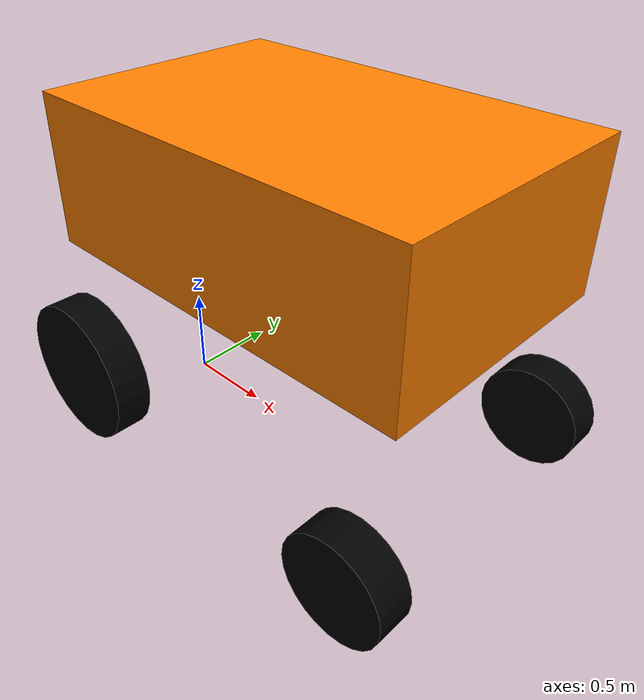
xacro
<?xml version="1.0"?>
<robot name="hege" xmlns:xacro="http://www.ros.org/wiki/xacro">

  <xacro:arg name="drive" default="planar"/>
  <xacro:property name="drive" value="$(arg drive)"/>

  <!-- ============ SENSOR NOISE ============ -->
  <!-- Edited here rather than passed in at launch. The workspace is built
       with symlink install, so a change takes effect on the next launch with
       no rebuild. -->

  <xacro:property name="gps_noise" value="0.02"/>

  <xacro:property name="metres_per_latitude_degree" value="111195.0"/>

  <xacro:property name="imu_gyro_bias"  value="7.5e-6"/>
  <xacro:property name="imu_accel_bias" value="0.05"/>

  <!-- White noise per sample. Datasheets quote noise DENSITY, per root-hertz;
       convert with stddev = density * sqrt(rate) before putting a number
       here. -->
  <xacro:property name="imu_gyro_noise"  value="2e-4"/>
  <xacro:property name="imu_accel_noise" value="1.7e-2"/>

  <!-- ============ MEASURED HEGE DIMENSIONS ============ -->
  <!-- Body. base_link sits at the underside of the chassis, body_z_offset above
       it is the box centre, and base_z is how high base_link rides above the
       ground. -->
  <xacro:property name="base_length"   value="2.2"/>
  <xacro:property name="base_width"    value="1.4"/>
  <xacro:property name="base_height"   value="0.8"/>
  <xacro:property name="total_mass"        value="1300.0"/>
  <xacro:property name="rear_wheel_mass"   value="80.0"/>
  <xacro:property name="front_wheel_mass"  value="45.0"/>
  <xacro:property name="steer_link_mass"   value="15.0"/>
  <xacro:property name="sensor_mass"       value="0.05"/>
  <xacro:property name="base_mass"
    value="${total_mass - 2*rear_wheel_mass - 2*front_wheel_mass
                        - 2*steer_link_mass - 2*sensor_mass}"/>

  <xacro:property name="front_axle_load" value="0.4"/>
  <xacro:property name="com_x_target" value="${wheelbase*(front_axle_load - 0.5)}"/>
  <xacro:property name="base_com_x"
    value="${(total_mass*com_x_target
              - 2*(front_wheel_mass + steer_link_mass)*(wheelbase/2)
              + 2*rear_wheel_mass*(wheelbase/2)) / base_mass}"/>

  <xacro:property name="base_com_z" value="0.25"/>
  <xacro:property name="body_z_offset" value="0.4"/>
  <xacro:property name="base_z"        value="1.10"/>

  <xacro:property name="front_wheel_radius" value="0.28"/>
  <xacro:property name="rear_wheel_radius"  value="0.40"/>
  <xacro:property name="wheel_width"        value="0.2"/>

  <xacro:property name="wheel_mu_longitudinal" value="0.8"/>
  <xacro:property name="wheel_mu_lateral"      value="0.8"/>

  <!-- Front and rear tracks are equal; the wheel sizes are what differ. -->
  <xacro:property name="wheelbase"   value="1.90"/>
  <xacro:property name="front_track" value="1.55"/>
  <xacro:property name="rear_track"  value="1.55"/>

  <xacro:property name="max_steer" value="0.610865238"/>   <!-- 35 deg -->

  <!-- Axle heights relative to base_link, derived so each wheel rests on the
       ground given its own radius. -->
  <xacro:property name="front_axle_z" value="${front_wheel_radius - base_z}"/>
  <xacro:property name="rear_axle_z"  value="${rear_wheel_radius - base_z}"/>

  <!-- ============ MEASURED SENSOR HEIGHTS ============ -->
  <xacro:property name="imu_height" value="1.20"/>
  <xacro:property name="gps_height" value="1.30"/>
  <xacro:property name="imu_z" value="${round(imu_height - base_z, 6)}"/>
  <xacro:property name="gps_z" value="${round(gps_height - base_z, 6)}"/>

  <!-- ============ INERTIA HELPERS ============ -->
  <xacro:macro name="box_inertia" params="m x y z cx:=0 cy:=0 cz:=0">
    <inertial>
      <origin xyz="${cx} ${cy} ${cz}" rpy="0 0 0"/>
      <mass value="${m}"/>
      <inertia ixx="${m*(y*y+z*z)/12.0}" ixy="0" ixz="0"
               iyy="${m*(x*x+z*z)/12.0}" iyz="0"
               izz="${m*(x*x+y*y)/12.0}"/>
    </inertial>
  </xacro:macro>

  <!-- Cylinder spun about its local z axis, which is how the wheels are built. -->
  <xacro:macro name="cylinder_inertia" params="m r h">
    <inertial>
      <mass value="${m}"/>
      <inertia ixx="${m*(3*r*r+h*h)/12.0}" ixy="0" ixz="0"
               iyy="${m*(3*r*r+h*h)/12.0}" iyz="0"
               izz="${m*r*r/2.0}"/>
    </inertial>
  </xacro:macro>

  <!-- Contact/friction tuning shared by all four wheels. Without explicit kp/kd
       the wheels sink into the ground plane and jitter. -->
  <xacro:macro name="wheel_surface" params="link">
    <gazebo reference="${link}">
      <mu1>${wheel_mu_longitudinal}</mu1>
      <mu2>${wheel_mu_lateral}</mu2>
      <kp>10000000.0</kp>
      <kd>10000.0</kd>
      <minDepth>0.001</minDepth>
      <maxVel>1.0</maxVel>
    </gazebo>
  </xacro:macro>

  <link name="base_footprint">
    <xacro:if value="${drive == 'px4'}">
      <inertial>
        <mass value="1e-4"/>
        <inertia ixx="1e-6" ixy="0" ixz="0" iyy="1e-6" iyz="0" izz="1e-6"/>
      </inertial>
    </xacro:if>
  </link>

  <link name="base_link">
    <visual>
      <origin xyz="0 0 ${body_z_offset}" rpy="0 0 0"/>
      <geometry><box size="${base_length} ${base_width} ${base_height}"/></geometry>
      <material name="orange"><color rgba="1 0.5 0 1"/></material>
    </visual>
    <collision>
      <origin xyz="0 0 ${body_z_offset}" rpy="0 0 0"/>
      <geometry><box size="${base_length} ${base_width} ${base_height}"/></geometry>
    </collision>
    <xacro:box_inertia m="${base_mass}" x="${base_length}" y="${base_width}" z="${base_height}"
                       cx="${base_com_x}" cz="${base_com_z}"/>
  </link>

  <joint name="base_joint" type="fixed">
    <parent link="base_footprint"/>
    <child  link="base_link"/>
    <origin xyz="${wheelbase/2} 0 ${base_z}"/>
  </joint>

  <!-- ============ REAR (driven) WHEELS ============ -->
  <xacro:macro name="rear_wheel" params="prefix y_sign">
    <link name="${prefix}_rear_wheel">
      <visual>
        <geometry><cylinder radius="${rear_wheel_radius}" length="${wheel_width}"/></geometry>
        <material name="black"><color rgba="0 0 0 1"/></material>
      </visual>
      <collision>
        <geometry><cylinder radius="${rear_wheel_radius}" length="${wheel_width}"/></geometry>
      </collision>
      <xacro:cylinder_inertia m="${rear_wheel_mass}" r="${rear_wheel_radius}" h="${wheel_width}"/>
    </link>
    <joint name="${prefix}_rear_wheel_joint" type="continuous">
      <parent link="base_link"/>
      <child  link="${prefix}_rear_wheel"/>
      <origin xyz="${-wheelbase/2} ${y_sign*rear_track/2} ${rear_axle_z}" rpy="-1.5708 0 0"/>
      <axis xyz="0 0 1"/>
    </joint>
  </xacro:macro>

  <xacro:rear_wheel prefix="left"  y_sign=" 1"/>
  <xacro:rear_wheel prefix="right" y_sign="-1"/>
  <xacro:wheel_surface link="left_rear_wheel"/>
  <xacro:wheel_surface link="right_rear_wheel"/>

  <!-- ============ FRONT (steered) WHEELS ============ -->
  <!-- Each front side needs TWO joints: a revolute steer + a continuous roll -->
  <xacro:macro name="front_wheel" params="prefix y_sign">
    <!-- Steering hinge link (small, no visual mass) -->
    <link name="${prefix}_steer_link">
      <inertial>
        <mass value="${steer_link_mass}"/>
        <inertia ixx="0.5" ixy="0" ixz="0" iyy="0.5" iyz="0" izz="0.5"/>
      </inertial>
    </link>
    <joint name="${prefix}_steer_joint" type="revolute">
      <parent link="base_link"/>
      <child  link="${prefix}_steer_link"/>
      <origin xyz="${wheelbase/2} ${y_sign*front_track/2} ${front_axle_z}"/>
      <axis xyz="0 0 1"/>
      <limit lower="${-max_steer}" upper="${max_steer}" effort="8000" velocity="0.8"/>
    </joint>

    <!-- Actual rolling wheel attached to the steer link -->
    <link name="${prefix}_front_wheel">
      <visual>
        <geometry><cylinder radius="${front_wheel_radius}" length="${wheel_width}"/></geometry>
        <material name="black"><color rgba="0 0 0 1"/></material>
      </visual>
      <collision>
        <geometry><cylinder radius="${front_wheel_radius}" length="${wheel_width}"/></geometry>
      </collision>
      <xacro:cylinder_inertia m="${front_wheel_mass}" r="${front_wheel_radius}" h="${wheel_width}"/>
    </link>
    <joint name="${prefix}_front_wheel_joint" type="continuous">
      <parent link="${prefix}_steer_link"/>
      <child  link="${prefix}_front_wheel"/>
      <origin xyz="0 0 0" rpy="-1.5708 0 0"/>
      <axis xyz="0 0 1"/>
    </joint>
  </xacro:macro>

  <xacro:front_wheel prefix="left"  y_sign=" 1"/>
  <xacro:front_wheel prefix="right" y_sign="-1"/>
  <xacro:wheel_surface link="left_front_wheel"/>
  <xacro:wheel_surface link="right_front_wheel"/>

  <!-- ============ SENSOR FRAMES ============ -->

  <!-- IMU, 1.20 m above the ground -->
  <link name="imu_link">
    <inertial>
      <mass value="0.05"/>
      <inertia ixx="1e-5" ixy="0" ixz="0" iyy="1e-5" iyz="0" izz="1e-5"/>
    </inertial>
  </link>
  <joint name="imu_joint" type="fixed">
    <parent link="base_link"/>
    <child  link="imu_link"/>
    <origin xyz="0 0 ${imu_z}" rpy="0 0 0"/>
  </joint>

  <!-- GPS antenna, 1.30 m above the ground -->
  <link name="gps_link">
    <inertial>
      <mass value="0.05"/>
      <inertia ixx="1e-5" ixy="0" ixz="0" iyy="1e-5" iyz="0" izz="1e-5"/>
    </inertial>
  </link>
  <joint name="gps_joint" type="fixed">
    <parent link="base_link"/>
    <child  link="gps_link"/>
    <origin xyz="0 0 ${gps_z}" rpy="0 0 0"/>
  </joint>

  <!-- ============ SENSORS, GAZEBO CLASSIC ============ -->
  <xacro:if value="${drive in ['planar', 'ros2_control']}">

  <!-- ============ IMU SENSOR ============ -->
  <gazebo reference="imu_link">
    <sensor name="imu_sensor" type="imu">
      <always_on>true</always_on>
      <update_rate>100.0</update_rate>
      <visualize>false</visualize>
      <imu>
        <angular_velocity>
          <x><noise type="gaussian"><mean>0.0</mean><stddev>${imu_gyro_noise}</stddev><bias_mean>${imu_gyro_bias}</bias_mean><bias_stddev>${imu_gyro_bias}</bias_stddev></noise></x>
          <y><noise type="gaussian"><mean>0.0</mean><stddev>${imu_gyro_noise}</stddev><bias_mean>${imu_gyro_bias}</bias_mean><bias_stddev>${imu_gyro_bias}</bias_stddev></noise></y>
          <z><noise type="gaussian"><mean>0.0</mean><stddev>${imu_gyro_noise}</stddev><bias_mean>${imu_gyro_bias}</bias_mean><bias_stddev>${imu_gyro_bias}</bias_stddev></noise></z>
        </angular_velocity>
        <linear_acceleration>
          <x><noise type="gaussian"><mean>0.0</mean><stddev>${imu_accel_noise}</stddev><bias_mean>${imu_accel_bias}</bias_mean><bias_stddev>${imu_accel_bias}</bias_stddev></noise></x>
          <y><noise type="gaussian"><mean>0.0</mean><stddev>${imu_accel_noise}</stddev><bias_mean>${imu_accel_bias}</bias_mean><bias_stddev>${imu_accel_bias}</bias_stddev></noise></y>
          <z><noise type="gaussian"><mean>0.0</mean><stddev>${imu_accel_noise}</stddev><bias_mean>${imu_accel_bias}</bias_mean><bias_stddev>${imu_accel_bias}</bias_stddev></noise></z>
        </linear_acceleration>
      </imu>
      <plugin name="imu_plugin" filename="libgazebo_ros_imu_sensor.so">
        <ros>
          <namespace>/</namespace>
          <remapping>~/out:=imu/data</remapping>
        </ros>
        <frame_name>imu_link</frame_name>
        <initial_orientation_as_reference>false</initial_orientation_as_reference>
      </plugin>
    </sensor>
  </gazebo>

  <!-- ============ GPS SENSOR ============ -->
  <gazebo reference="gps_link">
    <sensor name="gps_sensor" type="gps">
      <always_on>true</always_on>
      <update_rate>10.0</update_rate>
      <gps>
        <position_sensing>
          <horizontal>
            <noise type="gaussian"><mean>0.0</mean><stddev>${gps_noise}</stddev></noise>
          </horizontal>
          <!-- Vertical error runs about twice the horizontal on any GNSS
               receiver, so it is derived rather than set separately. -->
          <vertical>
            <noise type="gaussian"><mean>0.0</mean><stddev>${gps_noise * 2}</stddev></noise>
          </vertical>
        </position_sensing>
      </gps>
      <plugin name="gps_plugin" filename="libgazebo_ros_gps_sensor.so">
        <ros>
          <namespace>/</namespace>
          <remapping>~/out:=gps/fix</remapping>
        </ros>
        <frame_name>gps_link</frame_name>
      </plugin>
    </sensor>
  </gazebo>

  </xacro:if>

  <!-- ============ SENSORS, GAZEBO HARMONIC (gz mode) ============ -->
  <xacro:if value="${drive == 'gz'}">

    <gazebo reference="imu_joint"><preserveFixedJoint>true</preserveFixedJoint></gazebo>
    <gazebo reference="gps_joint"><preserveFixedJoint>true</preserveFixedJoint></gazebo>

    <gazebo reference="imu_link">
      <sensor name="imu_sensor" type="imu">
        <topic>/imu/data</topic>
        <always_on>true</always_on>
        <update_rate>100.0</update_rate>
        <visualize>false</visualize>
        <imu>
          <angular_velocity>
            <x><noise type="gaussian"><mean>0.0</mean><stddev>${imu_gyro_noise}</stddev><bias_mean>${imu_gyro_bias}</bias_mean><bias_stddev>${imu_gyro_bias}</bias_stddev></noise></x>
            <y><noise type="gaussian"><mean>0.0</mean><stddev>${imu_gyro_noise}</stddev><bias_mean>${imu_gyro_bias}</bias_mean><bias_stddev>${imu_gyro_bias}</bias_stddev></noise></y>
            <z><noise type="gaussian"><mean>0.0</mean><stddev>${imu_gyro_noise}</stddev><bias_mean>${imu_gyro_bias}</bias_mean><bias_stddev>${imu_gyro_bias}</bias_stddev></noise></z>
          </angular_velocity>
          <linear_acceleration>
            <x><noise type="gaussian"><mean>0.0</mean><stddev>${imu_accel_noise}</stddev><bias_mean>${imu_accel_bias}</bias_mean><bias_stddev>${imu_accel_bias}</bias_stddev></noise></x>
            <y><noise type="gaussian"><mean>0.0</mean><stddev>${imu_accel_noise}</stddev><bias_mean>${imu_accel_bias}</bias_mean><bias_stddev>${imu_accel_bias}</bias_stddev></noise></y>
            <z><noise type="gaussian"><mean>0.0</mean><stddev>${imu_accel_noise}</stddev><bias_mean>${imu_accel_bias}</bias_mean><bias_stddev>${imu_accel_bias}</bias_stddev></noise></z>
          </linear_acceleration>
        </imu>
      </sensor>
    </gazebo>

    <!-- Vertical error at twice the horizontal, same rule as the Classic
         receiver, so gps_noise up at the top still drives both simulators. -->
    <gazebo reference="gps_link">
      <sensor name="gps_sensor" type="navsat">
        <topic>/gps/fix</topic>
        <always_on>true</always_on>
        <update_rate>10.0</update_rate>
        <visualize>false</visualize>
        <navsat>
          <position_sensing>
            <horizontal>
              <noise type="gaussian"><mean>0.0</mean><stddev>${gps_noise / metres_per_latitude_degree}</stddev></noise>
            </horizontal>
            <!-- Vertical noise IS in metres, in both simulators. -->
            <vertical>
              <noise type="gaussian"><mean>0.0</mean><stddev>${gps_noise * 2}</stddev></noise>
            </vertical>
          </position_sensing>
        </navsat>
      </sensor>
    </gazebo>

    <gazebo>
      <plugin filename="gz-sim-odometry-publisher-system" name="gz::sim::systems::OdometryPublisher">
        <odom_frame>world</odom_frame>
        <robot_base_frame>base_footprint</robot_base_frame>
        <odom_topic>/hege/ground_truth/odom</odom_topic>
        <tf_topic>/hege/ground_truth/pose</tf_topic>
        <odom_publish_frequency>50</odom_publish_frequency>
        <dimensions>3</dimensions>
      </plugin>
    </gazebo>
  </xacro:if>

  <!-- ============ PLANAR DRIVE (keyboard / teleop) ============ -->
  <xacro:if value="${drive == 'planar'}">
    <gazebo>
      <plugin name="planar_move" filename="libgazebo_ros_planar_move.so">
        <ros><namespace>/</namespace></ros>
        <update_rate>50</update_rate>
        <publish_rate>50</publish_rate>
        <publish_odom>true</publish_odom>
        <publish_odom_tf>true</publish_odom_tf>
        <odometry_frame>odom</odometry_frame>
        <robot_base_frame>base_footprint</robot_base_frame>
        <covariance_x>0.0001</covariance_x>
        <covariance_y>0.0001</covariance_y>
        <covariance_yaw>0.01</covariance_yaw>
      </plugin>
    </gazebo>

    <!-- joint_state_broadcaster is not running in this mode, so the wheel and
         steer joints would otherwise have no TF at all. -->
    <gazebo>
      <plugin name="joint_state_publisher" filename="libgazebo_ros_joint_state_publisher.so">
        <ros>
          <namespace>/</namespace>
          <remapping>~/out:=joint_states</remapping>
        </ros>
        <update_rate>50</update_rate>
        <joint_name>left_rear_wheel_joint</joint_name>
        <joint_name>right_rear_wheel_joint</joint_name>
        <joint_name>left_steer_joint</joint_name>
        <joint_name>right_steer_joint</joint_name>
        <joint_name>left_front_wheel_joint</joint_name>
        <joint_name>right_front_wheel_joint</joint_name>
      </plugin>
    </gazebo>
  </xacro:if>

  <xacro:if value="${drive in ['ros2_control', 'gz']}">
    <!-- ============ ros2_control HARDWARE INTERFACE ============ -->
    <ros2_control name="HegeGazeboSystem" type="system">
      <hardware>
        <xacro:if value="${drive == 'ros2_control'}">
          <plugin>gazebo_ros2_control/GazeboSystem</plugin>
        </xacro:if>
        <xacro:if value="${drive == 'gz'}">
          <plugin>gz_ros2_control/GazeboSimSystem</plugin>
        </xacro:if>
      </hardware>

      <!-- Rear wheels: traction, velocity commanded -->
      <joint name="left_rear_wheel_joint">
        <command_interface name="velocity"/>
        <state_interface name="position"/>
        <state_interface name="velocity"/>
      </joint>
      <joint name="right_rear_wheel_joint">
        <command_interface name="velocity"/>
        <state_interface name="position"/>
        <state_interface name="velocity"/>
      </joint>

      <!-- Front knuckles: steering, position commanded -->
      <joint name="left_steer_joint">
        <command_interface name="position">
          <param name="min">${-max_steer}</param>
          <param name="max">${max_steer}</param>
        </command_interface>
        <state_interface name="position"/>
        <state_interface name="velocity"/>
      </joint>
      <joint name="right_steer_joint">
        <command_interface name="position">
          <param name="min">${-max_steer}</param>
          <param name="max">${max_steer}</param>
        </command_interface>
        <state_interface name="position"/>
        <state_interface name="velocity"/>
      </joint>

      <joint name="left_front_wheel_joint">
        <state_interface name="position"/>
        <state_interface name="velocity"/>
      </joint>
      <joint name="right_front_wheel_joint">
        <state_interface name="position"/>
        <state_interface name="velocity"/>
      </joint>
    </ros2_control>

    <!-- ============ CONTROLLER MANAGER PLUGIN ============ -->
    <!-- The same controllers.yaml either way; only the host simulator's plugin
         name differs. -->
    <xacro:if value="${drive == 'ros2_control'}">
      <gazebo>
        <plugin filename="libgazebo_ros2_control.so" name="gazebo_ros2_control">
          <parameters>$(find hege_description)/config/controllers.yaml</parameters>
          <robot_param>robot_description</robot_param>
          <robot_param_node>robot_state_publisher</robot_param_node>
        </plugin>
      </gazebo>
    </xacro:if>

    <xacro:if value="${drive == 'gz'}">
      <gazebo>
        <plugin filename="gz_ros2_control-system" name="gz_ros2_control::GazeboSimROS2ControlPlugin">
          <parameters>$(find hege_description)/config/controllers.yaml</parameters>
          <robot_param>robot_description</robot_param>
          <robot_param_node>robot_state_publisher</robot_param_node>
        </plugin>
      </gazebo>
    </xacro:if>
  </xacro:if>

  <!-- ============ PX4 SITL (Gazebo Harmonic) ============ -->
  <xacro:if value="${drive == 'px4'}">

    <gazebo reference="base_joint">
      <preserveFixedJoint>true</preserveFixedJoint>
    </gazebo>

    <gazebo reference="base_link">

      <!-- 1.20 m above the ground = imu_z above base_link. -->
      <sensor name="imu_sensor" type="imu">
        <pose>0 0 ${imu_z} 0 0 0</pose>
        <always_on>1</always_on>
        <update_rate>250</update_rate>
        <imu>
          <angular_velocity>
            <x><noise type="gaussian"><mean>0.0</mean><stddev>${imu_gyro_noise}</stddev><bias_mean>${imu_gyro_bias}</bias_mean><bias_stddev>${imu_gyro_bias}</bias_stddev></noise></x>
            <y><noise type="gaussian"><mean>0.0</mean><stddev>${imu_gyro_noise}</stddev><bias_mean>${imu_gyro_bias}</bias_mean><bias_stddev>${imu_gyro_bias}</bias_stddev></noise></y>
            <z><noise type="gaussian"><mean>0.0</mean><stddev>${imu_gyro_noise}</stddev><bias_mean>${imu_gyro_bias}</bias_mean><bias_stddev>${imu_gyro_bias}</bias_stddev></noise></z>
          </angular_velocity>
          <linear_acceleration>
            <x><noise type="gaussian"><mean>0.0</mean><stddev>${imu_accel_noise}</stddev><bias_mean>${imu_accel_bias}</bias_mean><bias_stddev>${imu_accel_bias}</bias_stddev></noise></x>
            <y><noise type="gaussian"><mean>0.0</mean><stddev>${imu_accel_noise}</stddev><bias_mean>${imu_accel_bias}</bias_mean><bias_stddev>${imu_accel_bias}</bias_stddev></noise></y>
            <z><noise type="gaussian"><mean>0.0</mean><stddev>${imu_accel_noise}</stddev><bias_mean>${imu_accel_bias}</bias_mean><bias_stddev>${imu_accel_bias}</bias_stddev></noise></z>
          </linear_acceleration>
        </imu>
      </sensor>

      <sensor name="navsat_sensor" type="navsat">
        <pose>0 0 ${gps_z} 0 0 0</pose>
        <always_on>1</always_on>
        <update_rate>10</update_rate>
      </sensor>

      <sensor name="magnetometer_sensor" type="magnetometer">
        <always_on>1</always_on>
        <update_rate>100</update_rate>
        <magnetometer>
          <x><noise type="gaussian"><stddev>0.0001</stddev></noise></x>
          <y><noise type="gaussian"><stddev>0.0001</stddev></noise></y>
          <z><noise type="gaussian"><stddev>0.0001</stddev></noise></z>
        </magnetometer>
      </sensor>

      <sensor name="air_pressure_sensor" type="air_pressure">
        <always_on>1</always_on>
        <update_rate>50</update_rate>
        <air_pressure>
          <pressure><noise type="gaussian"><mean>0</mean><stddev>3</stddev></noise></pressure>
        </air_pressure>
      </sensor>
    </gazebo>

    <gazebo>
      <plugin filename="gz-sim-joint-controller-system" name="gz::sim::systems::JointController">
        <joint_name>left_rear_wheel_joint</joint_name>
        <sub_topic>command/motor_speed</sub_topic>
        <control_type>velocity</control_type>
        <use_actuator_msg>true</use_actuator_msg>
        <actuator_number>0</actuator_number>
      </plugin>
    </gazebo>
    <gazebo>
      <plugin filename="gz-sim-joint-controller-system" name="gz::sim::systems::JointController">
        <joint_name>right_rear_wheel_joint</joint_name>
        <sub_topic>command/motor_speed</sub_topic>
        <control_type>velocity</control_type>
        <use_actuator_msg>true</use_actuator_msg>
        <actuator_number>0</actuator_number>
      </plugin>
    </gazebo>

    <gazebo>
      <plugin filename="gz-sim-joint-position-controller-system" name="gz::sim::systems::JointPositionController">
        <joint_name>left_steer_joint</joint_name>
        <sub_topic>servo_0</sub_topic>
        <p_gain>100</p_gain>
        <i_gain>10</i_gain>
        <d_gain>0</d_gain>
      </plugin>
    </gazebo>
    <gazebo>
      <plugin filename="gz-sim-joint-position-controller-system" name="gz::sim::systems::JointPositionController">
        <joint_name>right_steer_joint</joint_name>
        <sub_topic>servo_0</sub_topic>
        <p_gain>100</p_gain>
        <i_gain>10</i_gain>
        <d_gain>0</d_gain>
      </plugin>
    </gazebo>

    <gazebo>
      <plugin filename="gz-sim-joint-state-publisher-system" name="gz::sim::systems::JointStatePublisher">
        <joint_name>left_rear_wheel_joint</joint_name>
        <joint_name>right_rear_wheel_joint</joint_name>
        <joint_name>left_steer_joint</joint_name>
        <joint_name>right_steer_joint</joint_name>
        <joint_name>left_front_wheel_joint</joint_name>
        <joint_name>right_front_wheel_joint</joint_name>
      </plugin>
    </gazebo>
  </xacro:if>

</robot>
